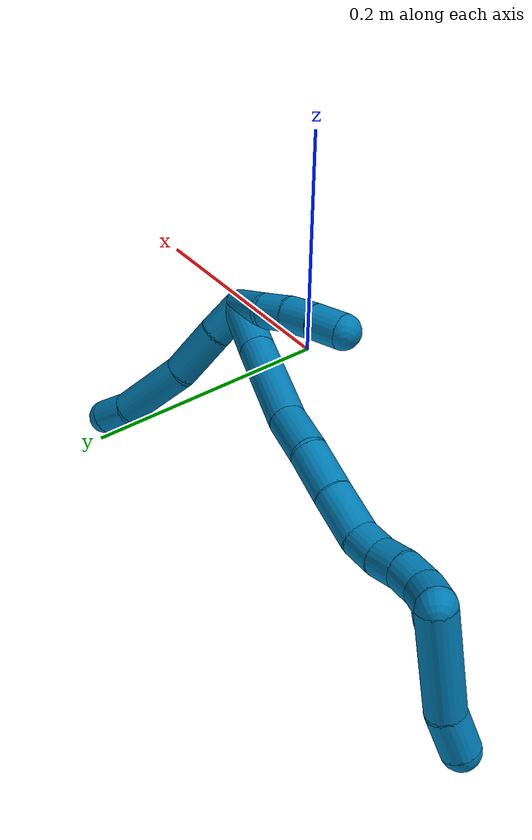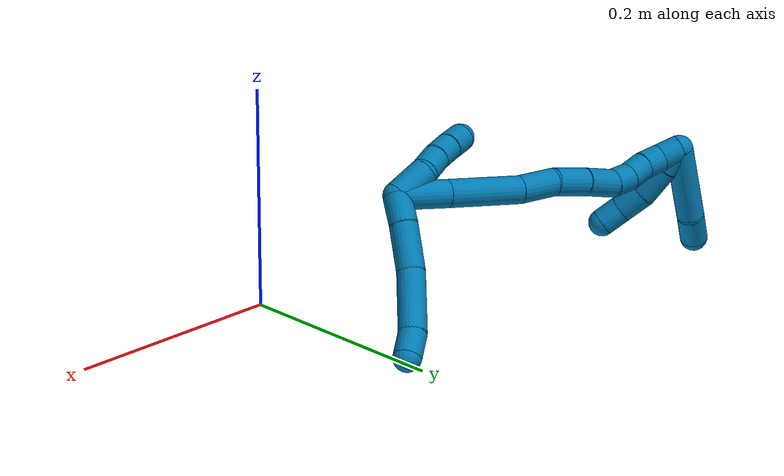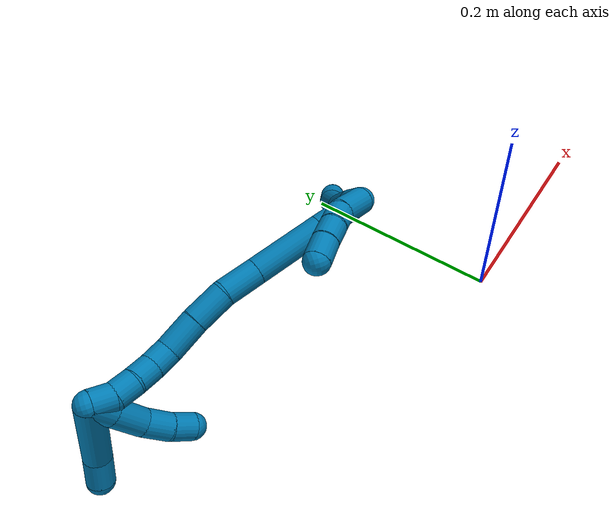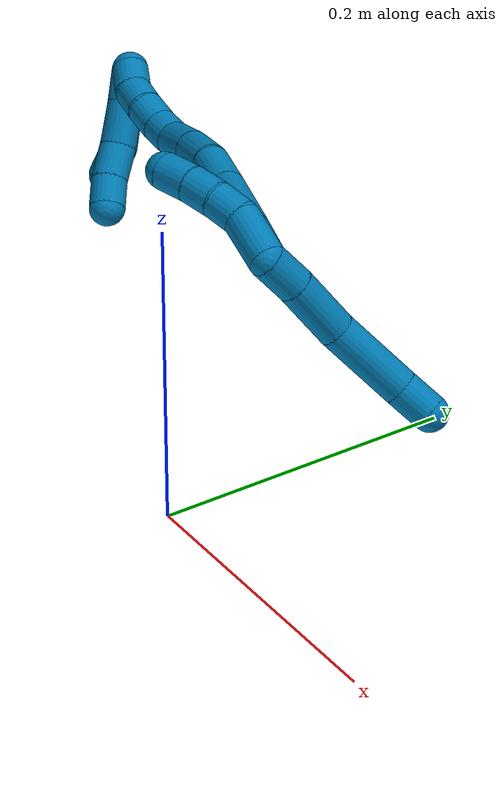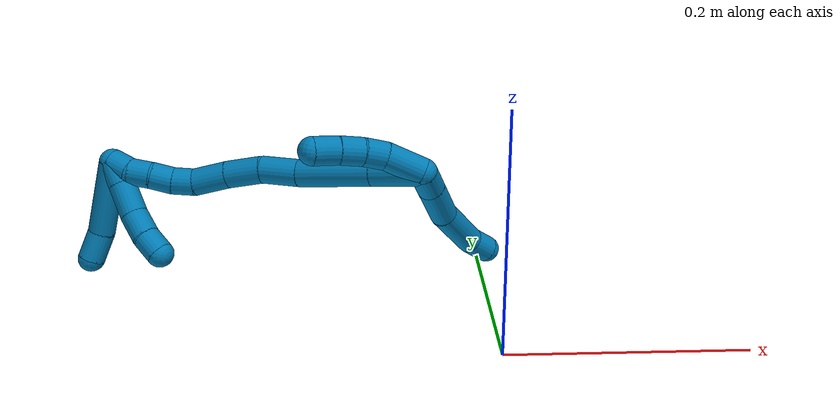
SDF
<sdf version="1.7">
 <world name="default">
  <model name="9">
   <static>0</static>
   <link name="9">
    <collision name="collision-cylinder-e_1_2_8">
     <pose>-0.000842 0.013146 0.001904 -1.42693 -0.063319 0.054811</pose>
     <geometry><cylinder><radius>0.0125</radius><length>0.026621</length></cylinder></geometry>
     <surface>
      <friction><ode><mu>1.16</mu><mu2>1.16</mu2><slip1>0</slip1><slip2>0</slip2></ode></friction>
      <contact><ode><kp>1e+06</kp><kd>1</kd><max_vel>0</max_vel><min_depth>0.001</min_depth></ode></contact>
     </surface>
    </collision>
    <visual name="visual-cylinder-e_1_2_8">
     <pose>-0.000842 0.013146 0.001904 -1.42693 -0.063319 0.054811</pose>
     <geometry><cylinder><radius>0.0125</radius><length>0.026621</length></cylinder></geometry>
     <material><ambient>0 0.490196 0.709804 1</ambient></material>
    </visual>
    <collision name="collision-cylinder-e_2_8_9">
     <pose>-0.004188 0.047155 0.005677 -1.48148 -0.118938 0.108783</pose>
     <geometry><cylinder><radius>0.0125</radius><length>0.04219</length></cylinder></geometry>
     <surface>
      <friction><ode><mu>1.16</mu><mu2>1.16</mu2><slip1>0</slip1><slip2>0</slip2></ode></friction>
      <contact><ode><kp>1e+06</kp><kd>1</kd><max_vel>0</max_vel><min_depth>0.001</min_depth></ode></contact>
     </surface>
    </collision>
    <visual name="visual-cylinder-e_2_8_9">
     <pose>-0.004188 0.047155 0.005677 -1.48148 -0.118938 0.108783</pose>
     <geometry><cylinder><radius>0.0125</radius><length>0.04219</length></cylinder></geometry>
     <material><ambient>0 0.490196 0.709804 1</ambient></material>
    </visual>
    <collision name="collision-cylinder-e_3_9_10">
     <pose>-0.00577 0.096301 0.005981 -1.62607 0.032479 -0.034325</pose>
     <geometry><cylinder><radius>0.0125</radius><length>0.056683</length></cylinder></geometry>
     <surface>
      <friction><ode><mu>1.16</mu><mu2>1.16</mu2><slip1>0</slip1><slip2>0</slip2></ode></friction>
      <contact><ode><kp>1e+06</kp><kd>1</kd><max_vel>0</max_vel><min_depth>0.001</min_depth></ode></contact>
     </surface>
    </collision>
    <visual name="visual-cylinder-e_3_9_10">
     <pose>-0.00577 0.096301 0.005981 -1.62607 0.032479 -0.034325</pose>
     <geometry><cylinder><radius>0.0125</radius><length>0.056683</length></cylinder></geometry>
     <material><ambient>0 0.490196 0.709804 1</ambient></material>
    </visual>
    <collision name="collision-cylinder-e_4_10_6">
     <pose>-0.00304 0.13621 0.000993 -1.85715 0.14824 -0.197897</pose>
     <geometry><cylinder><radius>0.0125</radius><length>0.024506</length></cylinder></geometry>
     <surface>
      <friction><ode><mu>1.16</mu><mu2>1.16</mu2><slip1>0</slip1><slip2>0</slip2></ode></friction>
      <contact><ode><kp>1e+06</kp><kd>1</kd><max_vel>0</max_vel><min_depth>0.001</min_depth></ode></contact>
     </surface>
    </collision>
    <visual name="visual-cylinder-e_4_10_6">
     <pose>-0.00304 0.13621 0.000993 -1.85715 0.14824 -0.197897</pose>
     <geometry><cylinder><radius>0.0125</radius><length>0.024506</length></cylinder></geometry>
     <material><ambient>0 0.490196 0.709804 1</ambient></material>
    </visual>
    <collision name="collision-cylinder-e_1_2_11">
     <pose>-0.001135 -0.011731 0.012946 0.736199 -0.064886 -0.025033</pose>
     <geometry><cylinder><radius>0.0125</radius><length>0.035014</length></cylinder></geometry>
     <surface>
      <friction><ode><mu>1.16</mu><mu2>1.16</mu2><slip1>0</slip1><slip2>0</slip2></ode></friction>
      <contact><ode><kp>1e+06</kp><kd>1</kd><max_vel>0</max_vel><min_depth>0.001</min_depth></ode></contact>
     </surface>
    </collision>
    <visual name="visual-cylinder-e_1_2_11">
     <pose>-0.001135 -0.011731 0.012946 0.736199 -0.064886 -0.025033</pose>
     <geometry><cylinder><radius>0.0125</radius><length>0.035014</length></cylinder></geometry>
     <material><ambient>0 0.490196 0.709804 1</ambient></material>
    </visual>
    <collision name="collision-cylinder-e_2_11_12">
     <pose>-0.005887 -0.031323 0.031775 0.928354 -0.352929 -0.178083</pose>
     <geometry><cylinder><radius>0.0125</radius><length>0.020929</length></cylinder></geometry>
     <surface>
      <friction><ode><mu>1.16</mu><mu2>1.16</mu2><slip1>0</slip1><slip2>0</slip2></ode></friction>
      <contact><ode><kp>1e+06</kp><kd>1</kd><max_vel>0</max_vel><min_depth>0.001</min_depth></ode></contact>
     </surface>
    </collision>
    <visual name="visual-cylinder-e_2_11_12">
     <pose>-0.005887 -0.031323 0.031775 0.928354 -0.352929 -0.178083</pose>
     <geometry><cylinder><radius>0.0125</radius><length>0.020929</length></cylinder></geometry>
     <material><ambient>0 0.490196 0.709804 1</ambient></material>
    </visual>
    <collision name="collision-cylinder-e_3_12_13">
     <pose>-0.014103 -0.046201 0.044114 0.826926 -0.449445 -0.199915</pose>
     <geometry><cylinder><radius>0.0125</radius><length>0.02117</length></cylinder></geometry>
     <surface>
      <friction><ode><mu>1.16</mu><mu2>1.16</mu2><slip1>0</slip1><slip2>0</slip2></ode></friction>
      <contact><ode><kp>1e+06</kp><kd>1</kd><max_vel>0</max_vel><min_depth>0.001</min_depth></ode></contact>
     </surface>
    </collision>
    <visual name="visual-cylinder-e_3_12_13">
     <pose>-0.014103 -0.046201 0.044114 0.826926 -0.449445 -0.199915</pose>
     <geometry><cylinder><radius>0.0125</radius><length>0.02117</length></cylinder></geometry>
     <material><ambient>0 0.490196 0.709804 1</ambient></material>
    </visual>
    <collision name="collision-cylinder-e_4_13_5">
     <pose>-0.024543 -0.060319 0.057381 0.806379 -0.535644 -0.233047</pose>
     <geometry><cylinder><radius>0.0125</radius><length>0.022887</length></cylinder></geometry>
     <surface>
      <friction><ode><mu>1.16</mu><mu2>1.16</mu2><slip1>0</slip1><slip2>0</slip2></ode></friction>
      <contact><ode><kp>1e+06</kp><kd>1</kd><max_vel>0</max_vel><min_depth>0.001</min_depth></ode></contact>
     </surface>
    </collision>
    <visual name="visual-cylinder-e_4_13_5">
     <pose>-0.024543 -0.060319 0.057381 0.806379 -0.535644 -0.233047</pose>
     <geometry><cylinder><radius>0.0125</radius><length>0.022887</length></cylinder></geometry>
     <material><ambient>0 0.490196 0.709804 1</ambient></material>
    </visual>
    <collision name="collision-cylinder-e_1_2_14">
     <pose>-0.006108 -0.003131 0.022638 0.137457 -0.261173 -0.018081</pose>
     <geometry><cylinder><radius>0.0125</radius><length>0.047311</length></cylinder></geometry>
     <surface>
      <friction><ode><mu>1.16</mu><mu2>1.16</mu2><slip1>0</slip1><slip2>0</slip2></ode></friction>
      <contact><ode><kp>1e+06</kp><kd>1</kd><max_vel>0</max_vel><min_depth>0.001</min_depth></ode></contact>
     </surface>
    </collision>
    <visual name="visual-cylinder-e_1_2_14">
     <pose>-0.006108 -0.003131 0.022638 0.137457 -0.261173 -0.018081</pose>
     <geometry><cylinder><radius>0.0125</radius><length>0.047311</length></cylinder></geometry>
     <material><ambient>0 0.490196 0.709804 1</ambient></material>
    </visual>
    <collision name="collision-cylinder-e_2_14_15">
     <pose>-0.021555 -0.011428 0.078604 0.153753 -0.270122 -0.020934</pose>
     <geometry><cylinder><radius>0.0125</radius><length>0.069991</length></cylinder></geometry>
     <surface>
      <friction><ode><mu>1.16</mu><mu2>1.16</mu2><slip1>0</slip1><slip2>0</slip2></ode></friction>
      <contact><ode><kp>1e+06</kp><kd>1</kd><max_vel>0</max_vel><min_depth>0.001</min_depth></ode></contact>
     </surface>
    </collision>
    <visual name="visual-cylinder-e_2_14_15">
     <pose>-0.021555 -0.011428 0.078604 0.153753 -0.270122 -0.020934</pose>
     <geometry><cylinder><radius>0.0125</radius><length>0.069991</length></cylinder></geometry>
     <material><ambient>0 0.490196 0.709804 1</ambient></material>
    </visual>
    <collision name="collision-cylinder-e_3_15_16">
     <pose>-0.03497 -0.021743 0.128315 0.304576 -0.233054 -0.035927</pose>
     <geometry><cylinder><radius>0.0125</radius><length>0.0353</length></cylinder></geometry>
     <surface>
      <friction><ode><mu>1.16</mu><mu2>1.16</mu2><slip1>0</slip1><slip2>0</slip2></ode></friction>
      <contact><ode><kp>1e+06</kp><kd>1</kd><max_vel>0</max_vel><min_depth>0.001</min_depth></ode></contact>
     </surface>
    </collision>
    <visual name="visual-cylinder-e_3_15_16">
     <pose>-0.03497 -0.021743 0.128315 0.304576 -0.233054 -0.035927</pose>
     <geometry><cylinder><radius>0.0125</radius><length>0.0353</length></cylinder></geometry>
     <material><ambient>0 0.490196 0.709804 1</ambient></material>
    </visual>
    <collision name="collision-cylinder-e_4_16_17">
     <pose>-0.046109 -0.029755 0.15973 0.18812 -0.432417 -0.041435</pose>
     <geometry><cylinder><radius>0.0125</radius><length>0.033708</length></cylinder></geometry>
     <surface>
      <friction><ode><mu>1.16</mu><mu2>1.16</mu2><slip1>0</slip1><slip2>0</slip2></ode></friction>
      <contact><ode><kp>1e+06</kp><kd>1</kd><max_vel>0</max_vel><min_depth>0.001</min_depth></ode></contact>
     </surface>
    </collision>
    <visual name="visual-cylinder-e_4_16_17">
     <pose>-0.046109 -0.029755 0.15973 0.18812 -0.432417 -0.041435</pose>
     <geometry><cylinder><radius>0.0125</radius><length>0.033708</length></cylinder></geometry>
     <material><ambient>0 0.490196 0.709804 1</ambient></material>
    </visual>
    <collision name="collision-cylinder-e_5_17_18">
     <pose>-0.06137 -0.035197 0.188969 0.179654 -0.51641 -0.047566</pose>
     <geometry><cylinder><radius>0.0125</radius><length>0.033207</length></cylinder></geometry>
     <surface>
      <friction><ode><mu>1.16</mu><mu2>1.16</mu2><slip1>0</slip1><slip2>0</slip2></ode></friction>
      <contact><ode><kp>1e+06</kp><kd>1</kd><max_vel>0</max_vel><min_depth>0.001</min_depth></ode></contact>
     </surface>
    </collision>
    <visual name="visual-cylinder-e_5_17_18">
     <pose>-0.06137 -0.035197 0.188969 0.179654 -0.51641 -0.047566</pose>
     <geometry><cylinder><radius>0.0125</radius><length>0.033207</length></cylinder></geometry>
     <material><ambient>0 0.490196 0.709804 1</ambient></material>
    </visual>
    <collision name="collision-cylinder-e_6_18_19">
     <pose>-0.072985 -0.042272 0.211499 0.495202 -0.346608 -0.088449</pose>
     <geometry><cylinder><radius>0.0125</radius><length>0.020117</length></cylinder></geometry>
     <surface>
      <friction><ode><mu>1.16</mu><mu2>1.16</mu2><slip1>0</slip1><slip2>0</slip2></ode></friction>
      <contact><ode><kp>1e+06</kp><kd>1</kd><max_vel>0</max_vel><min_depth>0.001</min_depth></ode></contact>
     </surface>
    </collision>
    <visual name="visual-cylinder-e_6_18_19">
     <pose>-0.072985 -0.042272 0.211499 0.495202 -0.346608 -0.088449</pose>
     <geometry><cylinder><radius>0.0125</radius><length>0.020117</length></cylinder></geometry>
     <material><ambient>0 0.490196 0.709804 1</ambient></material>
    </visual>
    <collision name="collision-cylinder-e_7_19_20">
     <pose>-0.07845 -0.052931 0.227518 0.675288 -0.204795 -0.072122</pose>
     <geometry><cylinder><radius>0.0125</radius><length>0.020138</length></cylinder></geometry>
     <surface>
      <friction><ode><mu>1.16</mu><mu2>1.16</mu2><slip1>0</slip1><slip2>0</slip2></ode></friction>
      <contact><ode><kp>1e+06</kp><kd>1</kd><max_vel>0</max_vel><min_depth>0.001</min_depth></ode></contact>
     </surface>
    </collision>
    <visual name="visual-cylinder-e_7_19_20">
     <pose>-0.07845 -0.052931 0.227518 0.675288 -0.204795 -0.072122</pose>
     <geometry><cylinder><radius>0.0125</radius><length>0.020138</length></cylinder></geometry>
     <material><ambient>0 0.490196 0.709804 1</ambient></material>
    </visual>
    <collision name="collision-cylinder-e_8_20_21">
     <pose>-0.082637 -0.063739 0.243855 0.493172 -0.214675 -0.054231</pose>
     <geometry><cylinder><radius>0.0125</radius><length>0.020083</length></cylinder></geometry>
     <surface>
      <friction><ode><mu>1.16</mu><mu2>1.16</mu2><slip1>0</slip1><slip2>0</slip2></ode></friction>
      <contact><ode><kp>1e+06</kp><kd>1</kd><max_vel>0</max_vel><min_depth>0.001</min_depth></ode></contact>
     </surface>
    </collision>
    <visual name="visual-cylinder-e_8_20_21">
     <pose>-0.082637 -0.063739 0.243855 0.493172 -0.214675 -0.054231</pose>
     <geometry><cylinder><radius>0.0125</radius><length>0.020083</length></cylinder></geometry>
     <material><ambient>0 0.490196 0.709804 1</ambient></material>
    </visual>
    <collision name="collision-cylinder-e_9_21_1">
     <pose>-0.083635 -0.072223 0.261738 0.393722 0.11355 0.02267</pose>
     <geometry><cylinder><radius>0.0125</radius><length>0.020144</length></cylinder></geometry>
     <surface>
      <friction><ode><mu>1.16</mu><mu2>1.16</mu2><slip1>0</slip1><slip2>0</slip2></ode></friction>
      <contact><ode><kp>1e+06</kp><kd>1</kd><max_vel>0</max_vel><min_depth>0.001</min_depth></ode></contact>
     </surface>
    </collision>
    <visual name="visual-cylinder-e_9_21_1">
     <pose>-0.083635 -0.072223 0.261738 0.393722 0.11355 0.02267</pose>
     <geometry><cylinder><radius>0.0125</radius><length>0.020144</length></cylinder></geometry>
     <material><ambient>0 0.490196 0.709804 1</ambient></material>
    </visual>
    <collision name="collision-cylinder-e_1_1_22">
     <pose>-0.08997 -0.070017 0.264922 -2.35727 -0.718064 1.47381</pose>
     <geometry><cylinder><radius>0.0125</radius><length>0.022729</length></cylinder></geometry>
     <surface>
      <friction><ode><mu>1.16</mu><mu2>1.16</mu2><slip1>0</slip1><slip2>0</slip2></ode></friction>
      <contact><ode><kp>1e+06</kp><kd>1</kd><max_vel>0</max_vel><min_depth>0.001</min_depth></ode></contact>
     </surface>
    </collision>
    <visual name="visual-cylinder-e_1_1_22">
     <pose>-0.08997 -0.070017 0.264922 -2.35727 -0.718064 1.47381</pose>
     <geometry><cylinder><radius>0.0125</radius><length>0.022729</length></cylinder></geometry>
     <material><ambient>0 0.490196 0.709804 1</ambient></material>
    </visual>
    <collision name="collision-cylinder-e_2_22_23">
     <pose>-0.107927 -0.056479 0.250156 -2.43105 -0.739546 1.61452</pose>
     <geometry><cylinder><radius>0.0125</radius><length>0.031099</length></cylinder></geometry>
     <surface>
      <friction><ode><mu>1.16</mu><mu2>1.16</mu2><slip1>0</slip1><slip2>0</slip2></ode></friction>
      <contact><ode><kp>1e+06</kp><kd>1</kd><max_vel>0</max_vel><min_depth>0.001</min_depth></ode></contact>
     </surface>
    </collision>
    <visual name="visual-cylinder-e_2_22_23">
     <pose>-0.107927 -0.056479 0.250156 -2.43105 -0.739546 1.61452</pose>
     <geometry><cylinder><radius>0.0125</radius><length>0.031099</length></cylinder></geometry>
     <material><ambient>0 0.490196 0.709804 1</ambient></material>
    </visual>
    <collision name="collision-cylinder-e_3_23_24">
     <pose>-0.125732 -0.0447 0.232136 -2.71027 -0.620456 1.94267</pose>
     <geometry><cylinder><radius>0.0125</radius><length>0.025199</length></cylinder></geometry>
     <surface>
      <friction><ode><mu>1.16</mu><mu2>1.16</mu2><slip1>0</slip1><slip2>0</slip2></ode></friction>
      <contact><ode><kp>1e+06</kp><kd>1</kd><max_vel>0</max_vel><min_depth>0.001</min_depth></ode></contact>
     </surface>
    </collision>
    <visual name="visual-cylinder-e_3_23_24">
     <pose>-0.125732 -0.0447 0.232136 -2.71027 -0.620456 1.94267</pose>
     <geometry><cylinder><radius>0.0125</radius><length>0.025199</length></cylinder></geometry>
     <material><ambient>0 0.490196 0.709804 1</ambient></material>
    </visual>
    <collision name="collision-cylinder-e_4_24_4">
     <pose>-0.137541 -0.03593 0.214472 -2.64881 -0.441775 1.4577</pose>
     <geometry><cylinder><radius>0.0125</radius><length>0.020973</length></cylinder></geometry>
     <surface>
      <friction><ode><mu>1.16</mu><mu2>1.16</mu2><slip1>0</slip1><slip2>0</slip2></ode></friction>
      <contact><ode><kp>1e+06</kp><kd>1</kd><max_vel>0</max_vel><min_depth>0.001</min_depth></ode></contact>
     </surface>
    </collision>
    <visual name="visual-cylinder-e_4_24_4">
     <pose>-0.137541 -0.03593 0.214472 -2.64881 -0.441775 1.4577</pose>
     <geometry><cylinder><radius>0.0125</radius><length>0.020973</length></cylinder></geometry>
     <material><ambient>0 0.490196 0.709804 1</ambient></material>
    </visual>
    <collision name="collision-cylinder-e_1_1_25">
     <pose>-0.11039 -0.055383 0.279327 -1.18715 -0.896454 0.627495</pose>
     <geometry><cylinder><radius>0.0125</radius><length>0.071428</length></cylinder></geometry>
     <surface>
      <friction><ode><mu>1.16</mu><mu2>1.16</mu2><slip1>0</slip1><slip2>0</slip2></ode></friction>
      <contact><ode><kp>1e+06</kp><kd>1</kd><max_vel>0</max_vel><min_depth>0.001</min_depth></ode></contact>
     </surface>
    </collision>
    <visual name="visual-cylinder-e_1_1_25">
     <pose>-0.11039 -0.055383 0.279327 -1.18715 -0.896454 0.627495</pose>
     <geometry><cylinder><radius>0.0125</radius><length>0.071428</length></cylinder></geometry>
     <material><ambient>0 0.490196 0.709804 1</ambient></material>
    </visual>
    <collision name="collision-cylinder-e_2_25_3">
     <pose>-0.151066 -0.029331 0.291124 -1.00007 -1.10736 0.65142</pose>
     <geometry><cylinder><radius>0.0125</radius><length>0.028572</length></cylinder></geometry>
     <surface>
      <friction><ode><mu>1.16</mu><mu2>1.16</mu2><slip1>0</slip1><slip2>0</slip2></ode></friction>
      <contact><ode><kp>1e+06</kp><kd>1</kd><max_vel>0</max_vel><min_depth>0.001</min_depth></ode></contact>
     </surface>
    </collision>
    <visual name="visual-cylinder-e_2_25_3">
     <pose>-0.151066 -0.029331 0.291124 -1.00007 -1.10736 0.65142</pose>
     <geometry><cylinder><radius>0.0125</radius><length>0.028572</length></cylinder></geometry>
     <material><ambient>0 0.490196 0.709804 1</ambient></material>
    </visual>
    <collision name="collision-sphere-3">
     <pose>-0.163845 -0.023957 0.294574 0 -0 0</pose>
     <geometry><sphere><radius>0.0125</radius></sphere></geometry>
     <surface>
      <friction><ode><mu>1.16</mu><mu2>1.16</mu2><slip1>0</slip1><slip2>0</slip2></ode></friction>
      <contact><ode><kp>1e+06</kp><kd>1</kd><max_vel>0</max_vel><min_depth>0.001</min_depth></ode></contact>
     </surface>
    </collision>
    <visual name="visual-sphere-3">
     <pose>-0.163845 -0.023957 0.294574 0 -0 0</pose>
     <geometry><sphere><radius>0.0125</radius></sphere></geometry>
     <material><ambient>0 0.490196 0.709804 1</ambient></material>
    </visual>
    <collision name="collision-sphere-25">
     <pose>-0.138287 -0.034705 0.287674 0 -0 0</pose>
     <geometry><sphere><radius>0.0125</radius></sphere></geometry>
     <surface>
      <friction><ode><mu>1.16</mu><mu2>1.16</mu2><slip1>0</slip1><slip2>0</slip2></ode></friction>
      <contact><ode><kp>1e+06</kp><kd>1</kd><max_vel>0</max_vel><min_depth>0.001</min_depth></ode></contact>
     </surface>
    </collision>
    <visual name="visual-sphere-25">
     <pose>-0.138287 -0.034705 0.287674 0 -0 0</pose>
     <geometry><sphere><radius>0.0125</radius></sphere></geometry>
     <material><ambient>0 0.490196 0.709804 1</ambient></material>
    </visual>
    <collision name="collision-sphere-4">
     <pose>-0.142024 -0.031445 0.20612 0 -0 0</pose>
     <geometry><sphere><radius>0.0125</radius></sphere></geometry>
     <surface>
      <friction><ode><mu>1.16</mu><mu2>1.16</mu2><slip1>0</slip1><slip2>0</slip2></ode></friction>
      <contact><ode><kp>1e+06</kp><kd>1</kd><max_vel>0</max_vel><min_depth>0.001</min_depth></ode></contact>
     </surface>
    </collision>
    <visual name="visual-sphere-4">
     <pose>-0.142024 -0.031445 0.20612 0 -0 0</pose>
     <geometry><sphere><radius>0.0125</radius></sphere></geometry>
     <material><ambient>0 0.490196 0.709804 1</ambient></material>
    </visual>
    <collision name="collision-sphere-24">
     <pose>-0.133057 -0.040415 0.222824 0 -0 0</pose>
     <geometry><sphere><radius>0.0125</radius></sphere></geometry>
     <surface>
      <friction><ode><mu>1.16</mu><mu2>1.16</mu2><slip1>0</slip1><slip2>0</slip2></ode></friction>
      <contact><ode><kp>1e+06</kp><kd>1</kd><max_vel>0</max_vel><min_depth>0.001</min_depth></ode></contact>
     </surface>
    </collision>
    <visual name="visual-sphere-24">
     <pose>-0.133057 -0.040415 0.222824 0 -0 0</pose>
     <geometry><sphere><radius>0.0125</radius></sphere></geometry>
     <material><ambient>0 0.490196 0.709804 1</ambient></material>
    </visual>
    <collision name="collision-sphere-23">
     <pose>-0.118407 -0.048986 0.241448 0 -0 0</pose>
     <geometry><sphere><radius>0.0125</radius></sphere></geometry>
     <surface>
      <friction><ode><mu>1.16</mu><mu2>1.16</mu2><slip1>0</slip1><slip2>0</slip2></ode></friction>
      <contact><ode><kp>1e+06</kp><kd>1</kd><max_vel>0</max_vel><min_depth>0.001</min_depth></ode></contact>
     </surface>
    </collision>
    <visual name="visual-sphere-23">
     <pose>-0.118407 -0.048986 0.241448 0 -0 0</pose>
     <geometry><sphere><radius>0.0125</radius></sphere></geometry>
     <material><ambient>0 0.490196 0.709804 1</ambient></material>
    </visual>
    <collision name="collision-sphere-22">
     <pose>-0.097447 -0.063971 0.258864 0 -0 0</pose>
     <geometry><sphere><radius>0.0125</radius></sphere></geometry>
     <surface>
      <friction><ode><mu>1.16</mu><mu2>1.16</mu2><slip1>0</slip1><slip2>0</slip2></ode></friction>
      <contact><ode><kp>1e+06</kp><kd>1</kd><max_vel>0</max_vel><min_depth>0.001</min_depth></ode></contact>
     </surface>
    </collision>
    <visual name="visual-sphere-22">
     <pose>-0.097447 -0.063971 0.258864 0 -0 0</pose>
     <geometry><sphere><radius>0.0125</radius></sphere></geometry>
     <material><ambient>0 0.490196 0.709804 1</ambient></material>
    </visual>
    <collision name="collision-sphere-1">
     <pose>-0.082493 -0.076062 0.27098 0 -0 0</pose>
     <geometry><sphere><radius>0.0125</radius></sphere></geometry>
     <surface>
      <friction><ode><mu>1.16</mu><mu2>1.16</mu2><slip1>0</slip1><slip2>0</slip2></ode></friction>
      <contact><ode><kp>1e+06</kp><kd>1</kd><max_vel>0</max_vel><min_depth>0.001</min_depth></ode></contact>
     </surface>
    </collision>
    <visual name="visual-sphere-1">
     <pose>-0.082493 -0.076062 0.27098 0 -0 0</pose>
     <geometry><sphere><radius>0.0125</radius></sphere></geometry>
     <material><ambient>0 0.490196 0.709804 1</ambient></material>
    </visual>
    <collision name="collision-sphere-21">
     <pose>-0.084776 -0.068384 0.252497 0 -0 0</pose>
     <geometry><sphere><radius>0.0125</radius></sphere></geometry>
     <surface>
      <friction><ode><mu>1.16</mu><mu2>1.16</mu2><slip1>0</slip1><slip2>0</slip2></ode></friction>
      <contact><ode><kp>1e+06</kp><kd>1</kd><max_vel>0</max_vel><min_depth>0.001</min_depth></ode></contact>
     </surface>
    </collision>
    <visual name="visual-sphere-21">
     <pose>-0.084776 -0.068384 0.252497 0 -0 0</pose>
     <geometry><sphere><radius>0.0125</radius></sphere></geometry>
     <material><ambient>0 0.490196 0.709804 1</ambient></material>
    </visual>
    <collision name="collision-sphere-11">
     <pose>-0.00227 -0.023461 0.025891 0 -0 0</pose>
     <geometry><sphere><radius>0.0125</radius></sphere></geometry>
     <surface>
      <friction><ode><mu>1.16</mu><mu2>1.16</mu2><slip1>0</slip1><slip2>0</slip2></ode></friction>
      <contact><ode><kp>1e+06</kp><kd>1</kd><max_vel>0</max_vel><min_depth>0.001</min_depth></ode></contact>
     </surface>
    </collision>
    <visual name="visual-sphere-11">
     <pose>-0.00227 -0.023461 0.025891 0 -0 0</pose>
     <geometry><sphere><radius>0.0125</radius></sphere></geometry>
     <material><ambient>0 0.490196 0.709804 1</ambient></material>
    </visual>
    <collision name="collision-sphere-6">
     <pose>-0.00123 0.147835 -0.00243 0 -0 0</pose>
     <geometry><sphere><radius>0.0125</radius></sphere></geometry>
     <surface>
      <friction><ode><mu>1.16</mu><mu2>1.16</mu2><slip1>0</slip1><slip2>0</slip2></ode></friction>
      <contact><ode><kp>1e+06</kp><kd>1</kd><max_vel>0</max_vel><min_depth>0.001</min_depth></ode></contact>
     </surface>
    </collision>
    <visual name="visual-sphere-6">
     <pose>-0.00123 0.147835 -0.00243 0 -0 0</pose>
     <geometry><sphere><radius>0.0125</radius></sphere></geometry>
     <material><ambient>0 0.490196 0.709804 1</ambient></material>
    </visual>
    <collision name="collision-sphere-10">
     <pose>-0.00485 0.124585 0.004416 0 -0 0</pose>
     <geometry><sphere><radius>0.0125</radius></sphere></geometry>
     <surface>
      <friction><ode><mu>1.16</mu><mu2>1.16</mu2><slip1>0</slip1><slip2>0</slip2></ode></friction>
      <contact><ode><kp>1e+06</kp><kd>1</kd><max_vel>0</max_vel><min_depth>0.001</min_depth></ode></contact>
     </surface>
    </collision>
    <visual name="visual-sphere-10">
     <pose>-0.00485 0.124585 0.004416 0 -0 0</pose>
     <geometry><sphere><radius>0.0125</radius></sphere></geometry>
     <material><ambient>0 0.490196 0.709804 1</ambient></material>
    </visual>
    <collision name="collision-sphere-9">
     <pose>-0.006691 0.068018 0.007546 0 -0 0</pose>
     <geometry><sphere><radius>0.0125</radius></sphere></geometry>
     <surface>
      <friction><ode><mu>1.16</mu><mu2>1.16</mu2><slip1>0</slip1><slip2>0</slip2></ode></friction>
      <contact><ode><kp>1e+06</kp><kd>1</kd><max_vel>0</max_vel><min_depth>0.001</min_depth></ode></contact>
     </surface>
    </collision>
    <visual name="visual-sphere-9">
     <pose>-0.006691 0.068018 0.007546 0 -0 0</pose>
     <geometry><sphere><radius>0.0125</radius></sphere></geometry>
     <material><ambient>0 0.490196 0.709804 1</ambient></material>
    </visual>
    <collision name="collision-sphere-2">
     <geometry><sphere><radius>0.0125</radius></sphere></geometry>
     <surface>
      <friction><ode><mu>1.16</mu><mu2>1.16</mu2><slip1>0</slip1><slip2>0</slip2></ode></friction>
      <contact><ode><kp>1e+06</kp><kd>1</kd><max_vel>0</max_vel><min_depth>0.001</min_depth></ode></contact>
     </surface>
    </collision>
    <visual name="visual-sphere-2">
     <geometry><sphere><radius>0.0125</radius></sphere></geometry>
     <material><ambient>0 0.490196 0.709804 1</ambient></material>
    </visual>
    <collision name="collision-sphere-19">
     <pose>-0.076402 -0.046768 0.219823 0 -0 0</pose>
     <geometry><sphere><radius>0.0125</radius></sphere></geometry>
     <surface>
      <friction><ode><mu>1.16</mu><mu2>1.16</mu2><slip1>0</slip1><slip2>0</slip2></ode></friction>
      <contact><ode><kp>1e+06</kp><kd>1</kd><max_vel>0</max_vel><min_depth>0.001</min_depth></ode></contact>
     </surface>
    </collision>
    <visual name="visual-sphere-19">
     <pose>-0.076402 -0.046768 0.219823 0 -0 0</pose>
     <geometry><sphere><radius>0.0125</radius></sphere></geometry>
     <material><ambient>0 0.490196 0.709804 1</ambient></material>
    </visual>
    <collision name="collision-sphere-8">
     <pose>-0.001684 0.026293 0.003809 0 -0 0</pose>
     <geometry><sphere><radius>0.0125</radius></sphere></geometry>
     <surface>
      <friction><ode><mu>1.16</mu><mu2>1.16</mu2><slip1>0</slip1><slip2>0</slip2></ode></friction>
      <contact><ode><kp>1e+06</kp><kd>1</kd><max_vel>0</max_vel><min_depth>0.001</min_depth></ode></contact>
     </surface>
    </collision>
    <visual name="visual-sphere-8">
     <pose>-0.001684 0.026293 0.003809 0 -0 0</pose>
     <geometry><sphere><radius>0.0125</radius></sphere></geometry>
     <material><ambient>0 0.490196 0.709804 1</ambient></material>
    </visual>
    <collision name="collision-sphere-12">
     <pose>-0.009504 -0.039185 0.037658 0 -0 0</pose>
     <geometry><sphere><radius>0.0125</radius></sphere></geometry>
     <surface>
      <friction><ode><mu>1.16</mu><mu2>1.16</mu2><slip1>0</slip1><slip2>0</slip2></ode></friction>
      <contact><ode><kp>1e+06</kp><kd>1</kd><max_vel>0</max_vel><min_depth>0.001</min_depth></ode></contact>
     </surface>
    </collision>
    <visual name="visual-sphere-12">
     <pose>-0.009504 -0.039185 0.037658 0 -0 0</pose>
     <geometry><sphere><radius>0.0125</radius></sphere></geometry>
     <material><ambient>0 0.490196 0.709804 1</ambient></material>
    </visual>
    <collision name="collision-sphere-13">
     <pose>-0.018702 -0.053216 0.05057 0 -0 0</pose>
     <geometry><sphere><radius>0.0125</radius></sphere></geometry>
     <surface>
      <friction><ode><mu>1.16</mu><mu2>1.16</mu2><slip1>0</slip1><slip2>0</slip2></ode></friction>
      <contact><ode><kp>1e+06</kp><kd>1</kd><max_vel>0</max_vel><min_depth>0.001</min_depth></ode></contact>
     </surface>
    </collision>
    <visual name="visual-sphere-13">
     <pose>-0.018702 -0.053216 0.05057 0 -0 0</pose>
     <geometry><sphere><radius>0.0125</radius></sphere></geometry>
     <material><ambient>0 0.490196 0.709804 1</ambient></material>
    </visual>
    <collision name="collision-sphere-5">
     <pose>-0.030384 -0.067422 0.064192 0 -0 0</pose>
     <geometry><sphere><radius>0.0125</radius></sphere></geometry>
     <surface>
      <friction><ode><mu>1.16</mu><mu2>1.16</mu2><slip1>0</slip1><slip2>0</slip2></ode></friction>
      <contact><ode><kp>1e+06</kp><kd>1</kd><max_vel>0</max_vel><min_depth>0.001</min_depth></ode></contact>
     </surface>
    </collision>
    <visual name="visual-sphere-5">
     <pose>-0.030384 -0.067422 0.064192 0 -0 0</pose>
     <geometry><sphere><radius>0.0125</radius></sphere></geometry>
     <material><ambient>0 0.490196 0.709804 1</ambient></material>
    </visual>
    <collision name="collision-sphere-14">
     <pose>-0.012216 -0.006263 0.045275 0 -0 0</pose>
     <geometry><sphere><radius>0.0125</radius></sphere></geometry>
     <surface>
      <friction><ode><mu>1.16</mu><mu2>1.16</mu2><slip1>0</slip1><slip2>0</slip2></ode></friction>
      <contact><ode><kp>1e+06</kp><kd>1</kd><max_vel>0</max_vel><min_depth>0.001</min_depth></ode></contact>
     </surface>
    </collision>
    <visual name="visual-sphere-14">
     <pose>-0.012216 -0.006263 0.045275 0 -0 0</pose>
     <geometry><sphere><radius>0.0125</radius></sphere></geometry>
     <material><ambient>0 0.490196 0.709804 1</ambient></material>
    </visual>
    <collision name="collision-sphere-15">
     <pose>-0.030893 -0.016593 0.111932 0 -0 0</pose>
     <geometry><sphere><radius>0.0125</radius></sphere></geometry>
     <surface>
      <friction><ode><mu>1.16</mu><mu2>1.16</mu2><slip1>0</slip1><slip2>0</slip2></ode></friction>
      <contact><ode><kp>1e+06</kp><kd>1</kd><max_vel>0</max_vel><min_depth>0.001</min_depth></ode></contact>
     </surface>
    </collision>
    <visual name="visual-sphere-15">
     <pose>-0.030893 -0.016593 0.111932 0 -0 0</pose>
     <geometry><sphere><radius>0.0125</radius></sphere></geometry>
     <material><ambient>0 0.490196 0.709804 1</ambient></material>
    </visual>
    <collision name="collision-sphere-16">
     <pose>-0.039046 -0.026893 0.144698 0 -0 0</pose>
     <geometry><sphere><radius>0.0125</radius></sphere></geometry>
     <surface>
      <friction><ode><mu>1.16</mu><mu2>1.16</mu2><slip1>0</slip1><slip2>0</slip2></ode></friction>
      <contact><ode><kp>1e+06</kp><kd>1</kd><max_vel>0</max_vel><min_depth>0.001</min_depth></ode></contact>
     </surface>
    </collision>
    <visual name="visual-sphere-16">
     <pose>-0.039046 -0.026893 0.144698 0 -0 0</pose>
     <geometry><sphere><radius>0.0125</radius></sphere></geometry>
     <material><ambient>0 0.490196 0.709804 1</ambient></material>
    </visual>
    <collision name="collision-sphere-17">
     <pose>-0.053172 -0.032617 0.174763 0 -0 0</pose>
     <geometry><sphere><radius>0.0125</radius></sphere></geometry>
     <surface>
      <friction><ode><mu>1.16</mu><mu2>1.16</mu2><slip1>0</slip1><slip2>0</slip2></ode></friction>
      <contact><ode><kp>1e+06</kp><kd>1</kd><max_vel>0</max_vel><min_depth>0.001</min_depth></ode></contact>
     </surface>
    </collision>
    <visual name="visual-sphere-17">
     <pose>-0.053172 -0.032617 0.174763 0 -0 0</pose>
     <geometry><sphere><radius>0.0125</radius></sphere></geometry>
     <material><ambient>0 0.490196 0.709804 1</ambient></material>
    </visual>
    <collision name="collision-sphere-18">
     <pose>-0.069568 -0.037777 0.203175 0 -0 0</pose>
     <geometry><sphere><radius>0.0125</radius></sphere></geometry>
     <surface>
      <friction><ode><mu>1.16</mu><mu2>1.16</mu2><slip1>0</slip1><slip2>0</slip2></ode></friction>
      <contact><ode><kp>1e+06</kp><kd>1</kd><max_vel>0</max_vel><min_depth>0.001</min_depth></ode></contact>
     </surface>
    </collision>
    <visual name="visual-sphere-18">
     <pose>-0.069568 -0.037777 0.203175 0 -0 0</pose>
     <geometry><sphere><radius>0.0125</radius></sphere></geometry>
     <material><ambient>0 0.490196 0.709804 1</ambient></material>
    </visual>
    <collision name="collision-sphere-20">
     <pose>-0.080498 -0.059094 0.235213 0 -0 0</pose>
     <geometry><sphere><radius>0.0125</radius></sphere></geometry>
     <surface>
      <friction><ode><mu>1.16</mu><mu2>1.16</mu2><slip1>0</slip1><slip2>0</slip2></ode></friction>
      <contact><ode><kp>1e+06</kp><kd>1</kd><max_vel>0</max_vel><min_depth>0.001</min_depth></ode></contact>
     </surface>
    </collision>
    <visual name="visual-sphere-20">
     <pose>-0.080498 -0.059094 0.235213 0 -0 0</pose>
     <geometry><sphere><radius>0.0125</radius></sphere></geometry>
     <material><ambient>0 0.490196 0.709804 1</ambient></material>
    </visual>
    <inertial>
     <pose>-0.051062 -0.014466 0.130941 0 -0 0</pose>
     <mass>0.75</mass>
     <inertia>
      <ixx>0.000113</ixx>
      <ixy>0</ixy>
      <ixz>0</ixz>
      <iyy>0.000124</iyy>
      <iyz>0</iyz>
      <izz>4.1e-05</izz>
     </inertia>
    </inertial>
   </link>
   <pose>-0.058166 0.111164 0.117217 -1.6058 -0.782277 0.947398</pose>
  </model>
 </world>
</sdf>
